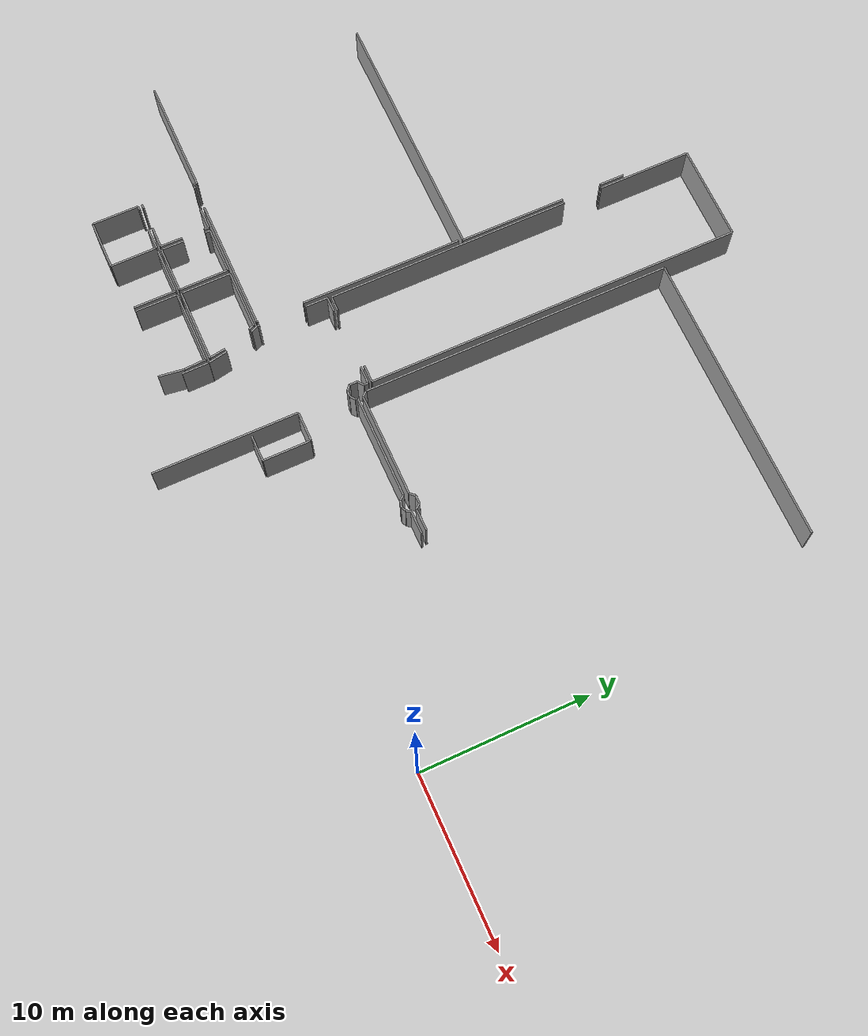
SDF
<sdf version="1.6">
 <world name="default">
  <model name="ground_plane">
   <static>1</static>
   <link name="link">
    <collision name="collision">
     <geometry><plane><normal>0 0 1</normal><size>100 100</size></plane></geometry>
     <surface><friction><ode><mu>100</mu><mu2>50</mu2></ode></friction></surface>
    </collision>
    <visual name="visual">
     <cast_shadows>0</cast_shadows>
     <geometry><plane><normal>0 0 1</normal><size>100 100</size></plane></geometry>
     <material>
      <script><uri>file://media/materials/scripts/gazebo.material</uri><name>Gazebo/Grey</name></script>
     </material>
    </visual>
   </link>
  </model>
  <model name="50041169">
   <static>1</static>
   <link name="Wall_0">
    <collision name="Wall_0_Collision">
     <geometry><box><size>15.3000393536 0.1 2.5</size></box></geometry>
     <pose>7.65001967679 0 1.25 0 0 0</pose>
    </collision>
    <visual name="Wall_0_Visual">
     <pose>7.65001967679 0 1.25 0 0 0</pose>
     <geometry><box><size>15.3000393536 0.1 2.5</size></box></geometry>
     <material>
      <script><uri>file://media/materials/scripts/gazebo.material</uri><name>Gazebo/Grey</name></script>
      <ambient>1 1 1 1</ambient>
     </material>
    </visual>
    <pose>45.1562083455 -14.251647138 0 0 0 3.14159265359</pose>
   </link>
   <link name="Wall_5">
    <collision name="Wall_5_Collision">
     <geometry><box><size>1.51155852894 0.1 2.5</size></box></geometry>
     <pose>0.755779264469 0 1.25 0 0 0</pose>
    </collision>
    <visual name="Wall_5_Visual">
     <pose>0.755779264469 0 1.25 0 0 0</pose>
     <geometry><box><size>1.51155852894 0.1 2.5</size></box></geometry>
     <material>
      <script><uri>file://media/materials/scripts/gazebo.material</uri><name>Gazebo/Grey</name></script>
      <ambient>1 1 1 1</ambient>
     </material>
    </visual>
    <pose>45.1559544514 -4.01984182398 0 0 0 -1.57079632679</pose>
   </link>
   <link name="Wall_6">
    <collision name="Wall_6_Collision">
     <geometry><box><size>6.33249971946 0.1 2.5</size></box></geometry>
     <pose>3.16624985973 0 1.25 0 0 0</pose>
    </collision>
    <visual name="Wall_6_Visual">
     <pose>3.16624985973 0 1.25 0 0 0</pose>
     <geometry><box><size>6.33249971946 0.1 2.5</size></box></geometry>
     <material>
      <script><uri>file://media/materials/scripts/gazebo.material</uri><name>Gazebo/Grey</name></script>
      <ambient>1 1 1 1</ambient>
     </material>
    </visual>
    <pose>45.1559544514 -7.91914742361 0 0 0 -1.57075623298</pose>
   </link>
   <link name="Wall_7">
    <collision name="Wall_7_Collision">
     <geometry><box><size>1.04870958323 0.1 2.5</size></box></geometry>
     <pose>0.524354791616 0 1.25 0 0 0</pose>
    </collision>
    <visual name="Wall_7_Visual">
     <pose>0.524354791616 0 1.25 0 0 0</pose>
     <geometry><box><size>1.04870958323 0.1 2.5</size></box></geometry>
     <material>
      <script><uri>file://media/materials/scripts/gazebo.material</uri><name>Gazebo/Grey</name></script>
      <ambient>1 1 1 1</ambient>
     </material>
    </visual>
    <pose>51.0838739162 -22.5202163178 0 0 0 3.14159265359</pose>
   </link>
   <link name="Wall_8">
    <collision name="Wall_8_Collision">
     <geometry><box><size>0.884820941185 0.1 2.5</size></box></geometry>
     <pose>0.442410470593 0 1.25 0 0 0</pose>
    </collision>
    <visual name="Wall_8_Visual">
     <pose>0.442410470593 0 1.25 0 0 0</pose>
     <geometry><box><size>0.884820941185 0.1 2.5</size></box></geometry>
     <material>
      <script><uri>file://media/materials/scripts/gazebo.material</uri><name>Gazebo/Grey</name></script>
      <ambient>1 1 1 1</ambient>
     </material>
    </visual>
    <pose>46.2591243192 -22.5202163178 0 0 0 3.14159265359</pose>
   </link>
   <link name="Wall_9">
    <collision name="Wall_9_Collision">
     <geometry><box><size>14.5852005129 0.1 2.5</size></box></geometry>
     <pose>7.29260025643 0 1.25 0 0 0</pose>
    </collision>
    <visual name="Wall_9_Visual">
     <pose>7.29260025643 0 1.25 0 0 0</pose>
     <geometry><box><size>14.5852005129 0.1 2.5</size></box></geometry>
     <material>
      <script><uri>file://media/materials/scripts/gazebo.material</uri><name>Gazebo/Grey</name></script>
      <ambient>1 1 1 1</ambient>
     </material>
    </visual>
    <pose>45.3743033781 -22.5202163178 0 0 0 1.57079632679</pose>
   </link>
   <link name="Wall_10">
    <collision name="Wall_10_Collision">
     <geometry><box><size>5.56377185076 0.1 2.5</size></box></geometry>
     <pose>2.78188592538 0 1.25 0 0 0</pose>
    </collision>
    <visual name="Wall_10_Visual">
     <pose>2.78188592538 0 1.25 0 0 0</pose>
     <geometry><box><size>5.56377185076 0.1 2.5</size></box></geometry>
     <material>
      <script><uri>file://media/materials/scripts/gazebo.material</uri><name>Gazebo/Grey</name></script>
      <ambient>1 1 1 1</ambient>
     </material>
    </visual>
    <pose>45.3743033781 -5.56377185076 0 0 0 1.57079632679</pose>
   </link>
   <link name="Wall_11">
    <collision name="Wall_11_Collision">
     <geometry><box><size>5.68849732776 0.1 2.5</size></box></geometry>
     <pose>2.84424866388 0 1.25 0 0 0</pose>
    </collision>
    <visual name="Wall_11_Visual">
     <pose>2.84424866388 0 1.25 0 0 0</pose>
     <geometry><box><size>5.68849732776 0.1 2.5</size></box></geometry>
     <material>
      <script><uri>file://media/materials/scripts/gazebo.material</uri><name>Gazebo/Grey</name></script>
      <ambient>1 1 1 1</ambient>
     </material>
    </visual>
    <pose>45.3743033781 -0.0 0 0 0 0.0</pose>
   </link>
   <link name="Wall_12">
    <collision name="Wall_12_Collision">
     <geometry><box><size>22.5202261774 0.1 2.5</size></box></geometry>
     <pose>11.2601130887 0 1.25 0 0 0</pose>
    </collision>
    <visual name="Wall_12_Visual">
     <pose>11.2601130887 0 1.25 0 0 0</pose>
     <geometry><box><size>22.5202261774 0.1 2.5</size></box></geometry>
     <material>
      <script><uri>file://media/materials/scripts/gazebo.material</uri><name>Gazebo/Grey</name></script>
      <ambient>1 1 1 1</ambient>
     </material>
    </visual>
    <pose>51.0628007058 -0.0 0 0 0 -1.56986058071</pose>
   </link>
   <link name="Wall_13">
    <collision name="Wall_13_Collision">
     <geometry><box><size>0.0944486054866 0.1 2.5</size></box></geometry>
     <pose>0.0472243027433 0 1.25 0 0 0</pose>
    </collision>
    <visual name="Wall_13_Visual">
     <pose>0.0472243027433 0 1.25 0 0 0</pose>
     <geometry><box><size>0.0944486054866 0.1 2.5</size></box></geometry>
     <material>
      <script><uri>file://media/materials/scripts/gazebo.material</uri><name>Gazebo/Grey</name></script>
      <ambient>1 1 1 1</ambient>
     </material>
    </visual>
    <pose>45.0571896462 -26.8521574651 0 0 0 -1.57079632679</pose>
   </link>
   <link name="Wall_14">
    <collision name="Wall_14_Collision">
     <geometry><box><size>7.95145544793 0.1 2.5</size></box></geometry>
     <pose>3.97572772397 0 1.25 0 0 0</pose>
    </collision>
    <visual name="Wall_14_Visual">
     <pose>3.97572772397 0 1.25 0 0 0</pose>
     <geometry><box><size>7.95145544793 0.1 2.5</size></box></geometry>
     <material>
      <script><uri>file://media/materials/scripts/gazebo.material</uri><name>Gazebo/Grey</name></script>
      <ambient>1 1 1 1</ambient>
     </material>
    </visual>
    <pose>45.0571896462 -26.9466060706 0 0 0 3.14159265359</pose>
   </link>
   <link name="Wall_15">
    <collision name="Wall_15_Collision">
     <geometry><box><size>0.261257029693 0.1 2.5</size></box></geometry>
     <pose>0.130628514846 0 1.25 0 0 0</pose>
    </collision>
    <visual name="Wall_15_Visual">
     <pose>0.130628514846 0 1.25 0 0 0</pose>
     <geometry><box><size>0.261257029693 0.1 2.5</size></box></geometry>
     <material>
      <script><uri>file://media/materials/scripts/gazebo.material</uri><name>Gazebo/Grey</name></script>
      <ambient>1 1 1 1</ambient>
     </material>
    </visual>
    <pose>35.7265814429 -26.9466060706 0 0 0 3.14159265359</pose>
   </link>
   <link name="Wall_16">
    <collision name="Wall_16_Collision">
     <geometry><box><size>0.196006245795 0.1 2.5</size></box></geometry>
     <pose>0.0980031228974 0 1.25 0 0 0</pose>
    </collision>
    <visual name="Wall_16_Visual">
     <pose>0.0980031228974 0 1.25 0 0 0</pose>
     <geometry><box><size>0.196006245795 0.1 2.5</size></box></geometry>
     <material>
      <script><uri>file://media/materials/scripts/gazebo.material</uri><name>Gazebo/Grey</name></script>
      <ambient>1 1 1 1</ambient>
     </material>
    </visual>
    <pose>35.4653244132 -26.9466060706 0 0 0 1.57079632679</pose>
   </link>
   <link name="Wall_17">
    <collision name="Wall_17_Collision">
     <geometry><box><size>6.8684701611 0.1 2.5</size></box></geometry>
     <pose>3.43423508055 0 1.25 0 0 0</pose>
    </collision>
    <visual name="Wall_17_Visual">
     <pose>3.43423508055 0 1.25 0 0 0</pose>
     <geometry><box><size>6.8684701611 0.1 2.5</size></box></geometry>
     <material>
      <script><uri>file://media/materials/scripts/gazebo.material</uri><name>Gazebo/Grey</name></script>
      <ambient>1 1 1 1</ambient>
     </material>
    </visual>
    <pose>35.4653244132 -26.7505998248 0 0 0 3.14159265359</pose>
   </link>
   <link name="Wall_26">
    <collision name="Wall_26_Collision">
     <geometry><box><size>9.60674401945 0.1 2.5</size></box></geometry>
     <pose>4.80337200972 0 1.25 0 0 0</pose>
    </collision>
    <visual name="Wall_26_Visual">
     <pose>4.80337200972 0 1.25 0 0 0</pose>
     <geometry><box><size>9.60674401945 0.1 2.5</size></box></geometry>
     <material>
      <script><uri>file://media/materials/scripts/gazebo.material</uri><name>Gazebo/Grey</name></script>
      <ambient>1 1 1 1</ambient>
     </material>
    </visual>
    <pose>45.0795323271 -14.5125233265 0 0 0 -1.57312205765</pose>
   </link>
   <link name="Wall_50">
    <collision name="Wall_50_Collision">
     <geometry><box><size>1.29524075508 0.1 2.5</size></box></geometry>
     <pose>0.647620377541 0 1.25 0 0 0</pose>
    </collision>
    <visual name="Wall_50_Visual">
     <pose>0.647620377541 0 1.25 0 0 0</pose>
     <geometry><box><size>1.29524075508 0.1 2.5</size></box></geometry>
     <material>
      <script><uri>file://media/materials/scripts/gazebo.material</uri><name>Gazebo/Grey</name></script>
      <ambient>1 1 1 1</ambient>
     </material>
    </visual>
    <pose>38.4089726175 -30.1438944816 0 0 0 3.14159265359</pose>
   </link>
   <link name="Wall_51">
    <collision name="Wall_51_Collision">
     <geometry><box><size>0.290327904231 0.1 2.5</size></box></geometry>
     <pose>0.145163952116 0 1.25 0 0 0</pose>
    </collision>
    <visual name="Wall_51_Visual">
     <pose>0.145163952116 0 1.25 0 0 0</pose>
     <geometry><box><size>0.290327904231 0.1 2.5</size></box></geometry>
     <material>
      <script><uri>file://media/materials/scripts/gazebo.material</uri><name>Gazebo/Grey</name></script>
      <ambient>1 1 1 1</ambient>
     </material>
    </visual>
    <pose>35.7339443718 -30.1438944816 0 0 0 3.14159265359</pose>
   </link>
   <link name="Wall_54">
    <collision name="Wall_54_Collision">
     <geometry><box><size>1.34601957524 0.1 2.5</size></box></geometry>
     <pose>0.673009787618 0 1.25 0 0 0</pose>
    </collision>
    <visual name="Wall_54_Visual">
     <pose>0.673009787618 0 1.25 0 0 0</pose>
     <geometry><box><size>1.34601957524 0.1 2.5</size></box></geometry>
     <material>
      <script><uri>file://media/materials/scripts/gazebo.material</uri><name>Gazebo/Grey</name></script>
      <ambient>1 1 1 1</ambient>
     </material>
    </visual>
    <pose>37.072347124 -27.1857743135 0 0 0 0.0</pose>
   </link>
   <link name="Wall_55">
    <collision name="Wall_55_Collision">
     <geometry><box><size>0.294771050995 0.1 2.5</size></box></geometry>
     <pose>0.147385525497 0 1.25 0 0 0</pose>
    </collision>
    <visual name="Wall_55_Visual">
     <pose>0.147385525497 0 1.25 0 0 0</pose>
     <geometry><box><size>0.294771050995 0.1 2.5</size></box></geometry>
     <material>
      <script><uri>file://media/materials/scripts/gazebo.material</uri><name>Gazebo/Grey</name></script>
      <ambient>1 1 1 1</ambient>
     </material>
    </visual>
    <pose>38.4183666992 -27.1857743135 0 0 0 -1.57079632679</pose>
   </link>
   <link name="Wall_56">
    <collision name="Wall_56_Collision">
     <geometry><box><size>1.31495110423 0.1 2.5</size></box></geometry>
     <pose>0.657475552116 0 1.25 0 0 0</pose>
    </collision>
    <visual name="Wall_56_Visual">
     <pose>0.657475552116 0 1.25 0 0 0</pose>
     <geometry><box><size>1.31495110423 0.1 2.5</size></box></geometry>
     <material>
      <script><uri>file://media/materials/scripts/gazebo.material</uri><name>Gazebo/Grey</name></script>
      <ambient>1 1 1 1</ambient>
     </material>
    </visual>
    <pose>38.4183666992 -28.8289769337 0 0 0 -1.57794044159</pose>
   </link>
   <link name="Wall_57">
    <collision name="Wall_57_Collision">
     <geometry><box><size>2.79486626128 0.1 2.5</size></box></geometry>
     <pose>1.39743313064 0 1.25 0 0 0</pose>
    </collision>
    <visual name="Wall_57_Visual">
     <pose>1.39743313064 0 1.25 0 0 0</pose>
     <geometry><box><size>2.79486626128 0.1 2.5</size></box></geometry>
     <material>
      <script><uri>file://media/materials/scripts/gazebo.material</uri><name>Gazebo/Grey</name></script>
      <ambient>1 1 1 1</ambient>
     </material>
    </visual>
    <pose>41.4248536935 -30.170172521 0 0 0 3.14159265359</pose>
   </link>
   <link name="Wall_58">
    <collision name="Wall_58_Collision">
     <geometry><box><size>1.34259200487 0.1 2.5</size></box></geometry>
     <pose>0.671296002437 0 1.25 0 0 0</pose>
    </collision>
    <visual name="Wall_58_Visual">
     <pose>0.671296002437 0 1.25 0 0 0</pose>
     <geometry><box><size>1.34259200487 0.1 2.5</size></box></geometry>
     <material>
      <script><uri>file://media/materials/scripts/gazebo.material</uri><name>Gazebo/Grey</name></script>
      <ambient>1 1 1 1</ambient>
     </material>
    </visual>
    <pose>38.6299874322 -30.170172521 0 0 0 1.57079632679</pose>
   </link>
   <link name="Wall_59">
    <collision name="Wall_59_Collision">
     <geometry><box><size>0.307084914882 0.1 2.5</size></box></geometry>
     <pose>0.153542457441 0 1.25 0 0 0</pose>
    </collision>
    <visual name="Wall_59_Visual">
     <pose>0.153542457441 0 1.25 0 0 0</pose>
     <geometry><box><size>0.307084914882 0.1 2.5</size></box></geometry>
     <material>
      <script><uri>file://media/materials/scripts/gazebo.material</uri><name>Gazebo/Grey</name></script>
      <ambient>1 1 1 1</ambient>
     </material>
    </visual>
    <pose>38.6299874322 -27.5006029985 0 0 0 1.57079632679</pose>
   </link>
   <link name="Wall_60">
    <collision name="Wall_60_Collision">
     <geometry><box><size>2.76541454559 0.1 2.5</size></box></geometry>
     <pose>1.3827072728 0 1.25 0 0 0</pose>
    </collision>
    <visual name="Wall_60_Visual">
     <pose>1.3827072728 0 1.25 0 0 0</pose>
     <geometry><box><size>2.76541454559 0.1 2.5</size></box></geometry>
     <material>
      <script><uri>file://media/materials/scripts/gazebo.material</uri><name>Gazebo/Grey</name></script>
      <ambient>1 1 1 1</ambient>
     </material>
    </visual>
    <pose>38.6299874322 -27.1935180836 0 0 0 0.0</pose>
   </link>
   <link name="Wall_61">
    <collision name="Wall_61_Collision">
     <geometry><box><size>2.97680013495 0.1 2.5</size></box></geometry>
     <pose>1.48840006748 0 1.25 0 0 0</pose>
    </collision>
    <visual name="Wall_61_Visual">
     <pose>1.48840006748 0 1.25 0 0 0</pose>
     <geometry><box><size>2.97680013495 0.1 2.5</size></box></geometry>
     <material>
      <script><uri>file://media/materials/scripts/gazebo.material</uri><name>Gazebo/Grey</name></script>
      <ambient>1 1 1 1</ambient>
     </material>
    </visual>
    <pose>41.3954019778 -27.1935180836 0 0 0 -1.56090241559</pose>
   </link>
   <link name="Wall_62">
    <collision name="Wall_62_Collision">
     <geometry><box><size>2.95646985642 0.1 2.5</size></box></geometry>
     <pose>1.47823492821 0 1.25 0 0 0</pose>
    </collision>
    <visual name="Wall_62_Visual">
     <pose>1.47823492821 0 1.25 0 0 0</pose>
     <geometry><box><size>2.95646985642 0.1 2.5</size></box></geometry>
     <material>
      <script><uri>file://media/materials/scripts/gazebo.material</uri><name>Gazebo/Grey</name></script>
      <ambient>1 1 1 1</ambient>
     </material>
    </visual>
    <pose>38.4207786932 -33.1645995455 0 0 0 3.14159265359</pose>
   </link>
   <link name="Wall_63">
    <collision name="Wall_63_Collision">
     <geometry><box><size>2.77366610387 0.1 2.5</size></box></geometry>
     <pose>1.38683305193 0 1.25 0 0 0</pose>
    </collision>
    <visual name="Wall_63_Visual">
     <pose>1.38683305193 0 1.25 0 0 0</pose>
     <geometry><box><size>2.77366610387 0.1 2.5</size></box></geometry>
     <material>
      <script><uri>file://media/materials/scripts/gazebo.material</uri><name>Gazebo/Grey</name></script>
      <ambient>1 1 1 1</ambient>
     </material>
    </visual>
    <pose>35.4643088368 -33.1645995455 0 0 0 1.57079632679</pose>
   </link>
   <link name="Wall_64">
    <collision name="Wall_64_Collision">
     <geometry><box><size>0.271793634875 0.1 2.5</size></box></geometry>
     <pose>0.135896817437 0 1.25 0 0 0</pose>
    </collision>
    <visual name="Wall_64_Visual">
     <pose>0.135896817437 0 1.25 0 0 0</pose>
     <geometry><box><size>0.271793634875 0.1 2.5</size></box></geometry>
     <material>
      <script><uri>file://media/materials/scripts/gazebo.material</uri><name>Gazebo/Grey</name></script>
      <ambient>1 1 1 1</ambient>
     </material>
    </visual>
    <pose>35.4643088368 -30.3909334417 0 0 0 0.0</pose>
   </link>
   <link name="Wall_65">
    <collision name="Wall_65_Collision">
     <geometry><box><size>1.31377502444 0.1 2.5</size></box></geometry>
     <pose>0.656887512219 0 1.25 0 0 0</pose>
    </collision>
    <visual name="Wall_65_Visual">
     <pose>0.656887512219 0 1.25 0 0 0</pose>
     <geometry><box><size>1.31377502444 0.1 2.5</size></box></geometry>
     <material>
      <script><uri>file://media/materials/scripts/gazebo.material</uri><name>Gazebo/Grey</name></script>
      <ambient>1 1 1 1</ambient>
     </material>
    </visual>
    <pose>37.0911352875 -30.3909334417 0 0 0 0.0</pose>
   </link>
   <link name="Wall_66">
    <collision name="Wall_66_Collision">
     <geometry><box><size>2.77371149568 0.1 2.5</size></box></geometry>
     <pose>1.38685574784 0 1.25 0 0 0</pose>
    </collision>
    <visual name="Wall_66_Visual">
     <pose>1.38685574784 0 1.25 0 0 0</pose>
     <geometry><box><size>2.77371149568 0.1 2.5</size></box></geometry>
     <material>
      <script><uri>file://media/materials/scripts/gazebo.material</uri><name>Gazebo/Grey</name></script>
      <ambient>1 1 1 1</ambient>
     </material>
    </visual>
    <pose>38.4049103119 -30.3909334417 0 0 0 -1.56507530358</pose>
   </link>
   <link name="Wall_69">
    <collision name="Wall_69_Collision">
     <geometry><box><size>1.59346858451 0.1 2.5</size></box></geometry>
     <pose>0.796734292254 0 1.25 0 0 0</pose>
    </collision>
    <visual name="Wall_69_Visual">
     <pose>0.796734292254 0 1.25 0 0 0</pose>
     <geometry><box><size>1.59346858451 0.1 2.5</size></box></geometry>
     <material>
      <script><uri>file://media/materials/scripts/gazebo.material</uri><name>Gazebo/Grey</name></script>
      <ambient>1 1 1 1</ambient>
     </material>
    </visual>
    <pose>46.3016515811 -31.9071890115 0 0 0 1.57685106479</pose>
   </link>
   <link name="Wall_70">
    <collision name="Wall_70_Collision">
     <geometry><box><size>1.18235773794 0.1 2.5</size></box></geometry>
     <pose>0.591178868972 0 1.25 0 0 0</pose>
    </collision>
    <visual name="Wall_70_Visual">
     <pose>0.591178868972 0 1.25 0 0 0</pose>
     <geometry><box><size>1.18235773794 0.1 2.5</size></box></geometry>
     <material>
      <script><uri>file://media/materials/scripts/gazebo.material</uri><name>Gazebo/Grey</name></script>
      <ambient>1 1 1 1</ambient>
     </material>
    </visual>
    <pose>46.2920036053 -30.313749635 0 0 0 1.75861101364</pose>
   </link>
   <link name="Wall_71">
    <collision name="Wall_71_Collision">
     <geometry><box><size>0.484234028282 0.1 2.5</size></box></geometry>
     <pose>0.242117014141 0 1.25 0 0 0</pose>
    </collision>
    <visual name="Wall_71_Visual">
     <pose>0.242117014141 0 1.25 0 0 0</pose>
     <geometry><box><size>0.484234028282 0.1 2.5</size></box></geometry>
     <material>
      <script><uri>file://media/materials/scripts/gazebo.material</uri><name>Gazebo/Grey</name></script>
      <ambient>1 1 1 1</ambient>
     </material>
    </visual>
    <pose>45.525243421 -27.4401762025 0 0 0 1.98753002715</pose>
   </link>
   <link name="Wall_72">
    <collision name="Wall_72_Collision">
     <geometry><box><size>0.123392532974 0.1 2.5</size></box></geometry>
     <pose>0.0616962664872 0 1.25 0 0 0</pose>
    </collision>
    <visual name="Wall_72_Visual">
     <pose>0.0616962664872 0 1.25 0 0 0</pose>
     <geometry><box><size>0.123392532974 0.1 2.5</size></box></geometry>
     <material>
      <script><uri>file://media/materials/scripts/gazebo.material</uri><name>Gazebo/Grey</name></script>
      <ambient>1 1 1 1</ambient>
     </material>
    </visual>
    <pose>45.3292371752 -26.9973848908 0 0 0 1.57079632679</pose>
   </link>
   <link name="Wall_73">
    <collision name="Wall_73_Collision">
     <geometry><box><size>1.35960290963 0.1 2.5</size></box></geometry>
     <pose>0.679801454813 0 1.25 0 0 0</pose>
    </collision>
    <visual name="Wall_73_Visual">
     <pose>0.679801454813 0 1.25 0 0 0</pose>
     <geometry><box><size>1.35960290963 0.1 2.5</size></box></geometry>
     <material>
      <script><uri>file://media/materials/scripts/gazebo.material</uri><name>Gazebo/Grey</name></script>
      <ambient>1 1 1 1</ambient>
     </material>
    </visual>
    <pose>45.3292371752 -24.0938519543 0 0 0 1.57079632679</pose>
   </link>
   <link name="Wall_74">
    <collision name="Wall_74_Collision">
     <geometry><box><size>0.913130133421 0.1 2.5</size></box></geometry>
     <pose>0.456565066711 0 1.25 0 0 0</pose>
    </collision>
    <visual name="Wall_74_Visual">
     <pose>0.456565066711 0 1.25 0 0 0</pose>
     <geometry><box><size>0.913130133421 0.1 2.5</size></box></geometry>
     <material>
      <script><uri>file://media/materials/scripts/gazebo.material</uri><name>Gazebo/Grey</name></script>
      <ambient>1 1 1 1</ambient>
     </material>
    </visual>
    <pose>45.3292371752 -22.7342490447 0 0 0 0.0</pose>
   </link>
   <link name="Wall_75">
    <collision name="Wall_75_Collision">
     <geometry><box><size>1.06838637604 0.1 2.5</size></box></geometry>
     <pose>0.534193188021 0 1.25 0 0 0</pose>
    </collision>
    <visual name="Wall_75_Visual">
     <pose>0.534193188021 0 1.25 0 0 0</pose>
     <geometry><box><size>1.06838637604 0.1 2.5</size></box></geometry>
     <material>
      <script><uri>file://media/materials/scripts/gazebo.material</uri><name>Gazebo/Grey</name></script>
      <ambient>1 1 1 1</ambient>
     </material>
    </visual>
    <pose>50.015233646 -22.7342490447 0 0 0 0.0</pose>
   </link>
   <link name="Wall_76">
    <collision name="Wall_76_Collision">
     <geometry><box><size>0.258718088685 0.1 2.5</size></box></geometry>
     <pose>0.129359044343 0 1.25 0 0 0</pose>
    </collision>
    <visual name="Wall_76_Visual">
     <pose>0.129359044343 0 1.25 0 0 0</pose>
     <geometry><box><size>0.258718088685 0.1 2.5</size></box></geometry>
     <material>
      <script><uri>file://media/materials/scripts/gazebo.material</uri><name>Gazebo/Grey</name></script>
      <ambient>1 1 1 1</ambient>
     </material>
    </visual>
    <pose>51.0836200221 -22.7342490447 0 0 0 -1.57079632679</pose>
   </link>
   <link name="Wall_77">
    <collision name="Wall_77_Collision">
     <geometry><box><size>0.429033328611 0.1 2.5</size></box></geometry>
     <pose>0.214516664306 0 1.25 0 0 0</pose>
    </collision>
    <visual name="Wall_77_Visual">
     <pose>0.214516664306 0 1.25 0 0 0</pose>
     <geometry><box><size>0.429033328611 0.1 2.5</size></box></geometry>
     <material>
      <script><uri>file://media/materials/scripts/gazebo.material</uri><name>Gazebo/Grey</name></script>
      <ambient>1 1 1 1</ambient>
     </material>
    </visual>
    <pose>51.0836200221 -22.9929671334 0 0 0 -2.49430413244</pose>
   </link>
   <link name="Wall_78">
    <collision name="Wall_78_Collision">
     <geometry><box><size>0.467621052679 0.1 2.5</size></box></geometry>
     <pose>0.233810526339 0 1.25 0 0 0</pose>
    </collision>
    <visual name="Wall_78_Visual">
     <pose>0.233810526339 0 1.25 0 0 0</pose>
     <geometry><box><size>0.467621052679 0.1 2.5</size></box></geometry>
     <material>
      <script><uri>file://media/materials/scripts/gazebo.material</uri><name>Gazebo/Grey</name></script>
      <ambient>1 1 1 1</ambient>
     </material>
    </visual>
    <pose>50.7413707743 -23.2516852221 0 0 0 -1.5528780709</pose>
   </link>
   <link name="Wall_79">
    <collision name="Wall_79_Collision">
     <geometry><box><size>0.360921984406 0.1 2.5</size></box></geometry>
     <pose>0.180460992203 0 1.25 0 0 0</pose>
    </collision>
    <visual name="Wall_79_Visual">
     <pose>0.180460992203 0 1.25 0 0 0</pose>
     <geometry><box><size>0.360921984406 0.1 2.5</size></box></geometry>
     <material>
      <script><uri>file://media/materials/scripts/gazebo.material</uri><name>Gazebo/Grey</name></script>
      <ambient>1 1 1 1</ambient>
     </material>
    </visual>
    <pose>50.7497492796 -23.7192312087 0 0 0 -0.708969626303</pose>
   </link>
   <link name="Wall_80">
    <collision name="Wall_80_Collision">
     <geometry><box><size>8.64585975116 0.1 2.5</size></box></geometry>
     <pose>4.32292987558 0 1.25 0 0 0</pose>
    </collision>
    <visual name="Wall_80_Visual">
     <pose>4.32292987558 0 1.25 0 0 0</pose>
     <geometry><box><size>8.64585975116 0.1 2.5</size></box></geometry>
     <material>
      <script><uri>file://media/materials/scripts/gazebo.material</uri><name>Gazebo/Grey</name></script>
      <ambient>1 1 1 1</ambient>
     </material>
    </visual>
    <pose>51.1170070963 -26.9493989057 0 0 0 -1.56984193246</pose>
   </link>
   <link name="Wall_81">
    <collision name="Wall_81_Collision">
     <geometry><box><size>4.38398943801 0.1 2.5</size></box></geometry>
     <pose>2.191994719 0 1.25 0 0 0</pose>
    </collision>
    <visual name="Wall_81_Visual">
     <pose>2.191994719 0 1.25 0 0 0</pose>
     <geometry><box><size>4.38398943801 0.1 2.5</size></box></geometry>
     <material>
      <script><uri>file://media/materials/scripts/gazebo.material</uri><name>Gazebo/Grey</name></script>
      <ambient>1 1 1 1</ambient>
     </material>
    </visual>
    <pose>46.0406484455 -30.1546849809 0 0 0 3.14159265359</pose>
   </link>
   <link name="Wall_82">
    <collision name="Wall_82_Collision">
     <geometry><box><size>2.97817780204 0.1 2.5</size></box></geometry>
     <pose>1.48908890102 0 1.25 0 0 0</pose>
    </collision>
    <visual name="Wall_82_Visual">
     <pose>1.48908890102 0 1.25 0 0 0</pose>
     <geometry><box><size>2.97817780204 0.1 2.5</size></box></geometry>
     <material>
      <script><uri>file://media/materials/scripts/gazebo.material</uri><name>Gazebo/Grey</name></script>
      <ambient>1 1 1 1</ambient>
     </material>
    </visual>
    <pose>41.6566590075 -30.1546849809 0 0 0 1.57079632679</pose>
   </link>
   <link name="Wall_83">
    <collision name="Wall_83_Collision">
     <geometry><box><size>3.52316148934 0.1 2.5</size></box></geometry>
     <pose>1.76158074467 0 1.25 0 0 0</pose>
    </collision>
    <visual name="Wall_83_Visual">
     <pose>1.76158074467 0 1.25 0 0 0</pose>
     <geometry><box><size>3.52316148934 0.1 2.5</size></box></geometry>
     <material>
      <script><uri>file://media/materials/scripts/gazebo.material</uri><name>Gazebo/Grey</name></script>
      <ambient>1 1 1 1</ambient>
     </material>
    </visual>
    <pose>41.6566590075 -27.1765071789 0 0 0 0.0</pose>
   </link>
   <link name="Wall_84">
    <collision name="Wall_84_Collision">
     <geometry><box><size>0.364900700973 0.1 2.5</size></box></geometry>
     <pose>0.182450350487 0 1.25 0 0 0</pose>
    </collision>
    <visual name="Wall_84_Visual">
     <pose>0.182450350487 0 1.25 0 0 0</pose>
     <geometry><box><size>0.364900700973 0.1 2.5</size></box></geometry>
     <material>
      <script><uri>file://media/materials/scripts/gazebo.material</uri><name>Gazebo/Grey</name></script>
      <ambient>1 1 1 1</ambient>
     </material>
    </visual>
    <pose>45.1798204969 -27.1765071789 0 0 0 -1.09563530093</pose>
   </link>
   <link name="Wall_85">
    <collision name="Wall_85_Collision">
     <geometry><box><size>0.977701332568 0.1 2.5</size></box></geometry>
     <pose>0.488850666284 0 1.25 0 0 0</pose>
    </collision>
    <visual name="Wall_85_Visual">
     <pose>0.488850666284 0 1.25 0 0 0</pose>
     <geometry><box><size>0.977701332568 0.1 2.5</size></box></geometry>
     <material>
      <script><uri>file://media/materials/scripts/gazebo.material</uri><name>Gazebo/Grey</name></script>
      <ambient>1 1 1 1</ambient>
     </material>
    </visual>
    <pose>45.8894545085 -29.1887448745 0 0 0 -1.41553098644</pose>
   </link>
   <link name="Wall_151">
    <collision name="Wall_151_Collision">
     <geometry><box><size>2.51913726785 0.1 2.5</size></box></geometry>
     <pose>1.25956863392 0 1.25 0 0 0</pose>
    </collision>
    <visual name="Wall_151_Visual">
     <pose>1.25956863392 0 1.25 0 0 0</pose>
     <geometry><box><size>2.51913726785 0.1 2.5</size></box></geometry>
     <material>
      <script><uri>file://media/materials/scripts/gazebo.material</uri><name>Gazebo/Grey</name></script>
      <ambient>1 1 1 1</ambient>
     </material>
    </visual>
    <pose>41.6492960786 -32.9046119863 0 0 0 1.57079632679</pose>
   </link>
   <link name="Wall_152">
    <collision name="Wall_152_Collision">
     <geometry><box><size>4.39160626103 0.1 2.5</size></box></geometry>
     <pose>2.19580313051 0 1.25 0 0 0</pose>
    </collision>
    <visual name="Wall_152_Visual">
     <pose>2.19580313051 0 1.25 0 0 0</pose>
     <geometry><box><size>4.39160626103 0.1 2.5</size></box></geometry>
     <material>
      <script><uri>file://media/materials/scripts/gazebo.material</uri><name>Gazebo/Grey</name></script>
      <ambient>1 1 1 1</ambient>
     </material>
    </visual>
    <pose>41.6492960786 -30.3854747185 0 0 0 0.0</pose>
   </link>
   <link name="Wall_153">
    <collision name="Wall_153_Collision">
     <geometry><box><size>1.3170033563 0.1 2.5</size></box></geometry>
     <pose>0.65850167815 0 1.25 0 0 0</pose>
    </collision>
    <visual name="Wall_153_Visual">
     <pose>0.65850167815 0 1.25 0 0 0</pose>
     <geometry><box><size>1.3170033563 0.1 2.5</size></box></geometry>
     <material>
      <script><uri>file://media/materials/scripts/gazebo.material</uri><name>Gazebo/Grey</name></script>
      <ambient>1 1 1 1</ambient>
     </material>
    </visual>
    <pose>46.0409023396 -30.3854747185 0 0 0 -1.51804608092</pose>
   </link>
   <link name="Wall_154">
    <collision name="Wall_154_Collision">
     <geometry><box><size>1.50238729876 0.1 2.5</size></box></geometry>
     <pose>0.751193649381 0 1.25 0 0 0</pose>
    </collision>
    <visual name="Wall_154_Visual">
     <pose>0.751193649381 0 1.25 0 0 0</pose>
     <geometry><box><size>1.50238729876 0.1 2.5</size></box></geometry>
     <material>
      <script><uri>file://media/materials/scripts/gazebo.material</uri><name>Gazebo/Grey</name></script>
      <ambient>1 1 1 1</ambient>
     </material>
    </visual>
    <pose>46.1103423762 -31.7006461605 0 0 0 -1.70137680766</pose>
   </link>
   <link name="Wall_158">
    <collision name="Wall_158_Collision">
     <geometry><box><size>2.77353915682 0.1 2.5</size></box></geometry>
     <pose>1.38676957841 0 1.25 0 0 0</pose>
    </collision>
    <visual name="Wall_158_Visual">
     <pose>1.38676957841 0 1.25 0 0 0</pose>
     <geometry><box><size>2.77353915682 0.1 2.5</size></box></geometry>
     <material>
      <script><uri>file://media/materials/scripts/gazebo.material</uri><name>Gazebo/Grey</name></script>
      <ambient>1 1 1 1</ambient>
     </material>
    </visual>
    <pose>38.632018585 -30.3909334417 0 0 0 0.0</pose>
   </link>
   <link name="Wall_159">
    <collision name="Wall_159_Collision">
     <geometry><box><size>2.50987013317 0.1 2.5</size></box></geometry>
     <pose>1.25493506658 0 1.25 0 0 0</pose>
    </collision>
    <visual name="Wall_159_Visual">
     <pose>1.25493506658 0 1.25 0 0 0</pose>
     <geometry><box><size>2.50987013317 0.1 2.5</size></box></geometry>
     <material>
      <script><uri>file://media/materials/scripts/gazebo.material</uri><name>Gazebo/Grey</name></script>
      <ambient>1 1 1 1</ambient>
     </material>
    </visual>
    <pose>41.4055577419 -30.3909334417 0 0 0 -1.57079632679</pose>
   </link>
   <link name="Wall_212">
    <collision name="Wall_212_Collision">
     <geometry><box><size>1.75656633618 0.1 2.5</size></box></geometry>
     <pose>0.878283168091 0 1.25 0 0 0</pose>
    </collision>
    <visual name="Wall_212_Visual">
     <pose>0.878283168091 0 1.25 0 0 0</pose>
     <geometry><box><size>1.75656633618 0.1 2.5</size></box></geometry>
     <material>
      <script><uri>file://media/materials/scripts/gazebo.material</uri><name>Gazebo/Grey</name></script>
      <ambient>1 1 1 1</ambient>
     </material>
    </visual>
    <pose>52.9141964886 -26.9392431417 0 0 0 3.14159265359</pose>
   </link>
   <link name="Wall_213">
    <collision name="Wall_213_Collision">
     <geometry><box><size>0.343677764099 0.1 2.5</size></box></geometry>
     <pose>0.17183888205 0 1.25 0 0 0</pose>
    </collision>
    <visual name="Wall_213_Visual">
     <pose>0.17183888205 0 1.25 0 0 0</pose>
     <geometry><box><size>0.343677764099 0.1 2.5</size></box></geometry>
     <material>
      <script><uri>file://media/materials/scripts/gazebo.material</uri><name>Gazebo/Grey</name></script>
      <ambient>1 1 1 1</ambient>
     </material>
    </visual>
    <pose>51.0545491476 -23.969443845 0 0 0 -0.0136674163746</pose>
   </link>
   <link name="Wall_214">
    <collision name="Wall_214_Collision">
     <geometry><box><size>0.345810522644 0.1 2.5</size></box></geometry>
     <pose>0.172905261322 0 1.25 0 0 0</pose>
    </collision>
    <visual name="Wall_214_Visual">
     <pose>0.172905261322 0 1.25 0 0 0</pose>
     <geometry><box><size>0.345810522644 0.1 2.5</size></box></geometry>
     <material>
      <script><uri>file://media/materials/scripts/gazebo.material</uri><name>Gazebo/Grey</name></script>
      <ambient>1 1 1 1</ambient>
     </material>
    </visual>
    <pose>51.3981948129 -23.9741408858 0 0 0 0.687640863057</pose>
   </link>
   <link name="Wall_215">
    <collision name="Wall_215_Collision">
     <geometry><box><size>0.135847936107 0.1 2.5</size></box></geometry>
     <pose>0.0679239680536 0 1.25 0 0 0</pose>
    </collision>
    <visual name="Wall_215_Visual">
     <pose>0.0679239680536 0 1.25 0 0 0</pose>
     <geometry><box><size>0.135847936107 0.1 2.5</size></box></geometry>
     <material>
      <script><uri>file://media/materials/scripts/gazebo.material</uri><name>Gazebo/Grey</name></script>
      <ambient>1 1 1 1</ambient>
     </material>
    </visual>
    <pose>51.665418354 -23.7546494357 0 0 0 1.24845475592</pose>
   </link>
   <link name="Wall_216">
    <collision name="Wall_216_Collision">
     <geometry><box><size>6.1945082706 0.1 2.5</size></box></geometry>
     <pose>3.0972541353 0 1.25 0 0 0</pose>
    </collision>
    <visual name="Wall_216_Visual">
     <pose>3.0972541353 0 1.25 0 0 0</pose>
     <geometry><box><size>6.1945082706 0.1 2.5</size></box></geometry>
     <material>
      <script><uri>file://media/materials/scripts/gazebo.material</uri><name>Gazebo/Grey</name></script>
      <ambient>1 1 1 1</ambient>
     </material>
    </visual>
    <pose>51.7084534041 -23.6257981796 0 0 0 0.0</pose>
   </link>
   <link name="Wall_217">
    <collision name="Wall_217_Collision">
     <geometry><box><size>0.332360494219 0.1 2.5</size></box></geometry>
     <pose>0.166180247109 0 1.25 0 0 0</pose>
    </collision>
    <visual name="Wall_217_Visual">
     <pose>0.166180247109 0 1.25 0 0 0</pose>
     <geometry><box><size>0.332360494219 0.1 2.5</size></box></geometry>
     <material>
      <script><uri>file://media/materials/scripts/gazebo.material</uri><name>Gazebo/Grey</name></script>
      <ambient>1 1 1 1</ambient>
     </material>
    </visual>
    <pose>57.9029616747 -23.6257981796 0 0 0 -0.9588500113</pose>
   </link>
   <link name="Wall_218">
    <collision name="Wall_218_Collision">
     <geometry><box><size>0.408543162374 0.1 2.5</size></box></geometry>
     <pose>0.204271581187 0 1.25 0 0 0</pose>
    </collision>
    <visual name="Wall_218_Visual">
     <pose>0.204271581187 0 1.25 0 0 0</pose>
     <geometry><box><size>0.408543162374 0.1 2.5</size></box></geometry>
     <material>
      <script><uri>file://media/materials/scripts/gazebo.material</uri><name>Gazebo/Grey</name></script>
      <ambient>1 1 1 1</ambient>
     </material>
    </visual>
    <pose>58.0938900385 -23.8978457086 0 0 0 -0.247691747132</pose>
   </link>
   <link name="Wall_219">
    <collision name="Wall_219_Collision">
     <geometry><box><size>0.307397112052 0.1 2.5</size></box></geometry>
     <pose>0.153698556026 0 1.25 0 0 0</pose>
    </collision>
    <visual name="Wall_219_Visual">
     <pose>0.153698556026 0 1.25 0 0 0</pose>
     <geometry><box><size>0.307397112052 0.1 2.5</size></box></geometry>
     <material>
      <script><uri>file://media/materials/scripts/gazebo.material</uri><name>Gazebo/Grey</name></script>
      <ambient>1 1 1 1</ambient>
     </material>
    </visual>
    <pose>58.4899648357 -23.9980069313 0 0 0 0.449426181429</pose>
   </link>
   <link name="Wall_220">
    <collision name="Wall_220_Collision">
     <geometry><box><size>0.292584944342 0.1 2.5</size></box></geometry>
     <pose>0.146292472171 0 1.25 0 0 0</pose>
    </collision>
    <visual name="Wall_220_Visual">
     <pose>0.146292472171 0 1.25 0 0 0</pose>
     <geometry><box><size>0.292584944342 0.1 2.5</size></box></geometry>
     <material>
      <script><uri>file://media/materials/scripts/gazebo.material</uri><name>Gazebo/Grey</name></script>
      <ambient>1 1 1 1</ambient>
     </material>
    </visual>
    <pose>58.7668363526 -23.8644586343 0 0 0 0.98303439713</pose>
   </link>
   <link name="Wall_221">
    <collision name="Wall_221_Collision">
     <geometry><box><size>1.3839767433 0.1 2.5</size></box></geometry>
     <pose>0.69198837165 0 1.25 0 0 0</pose>
    </collision>
    <visual name="Wall_221_Visual">
     <pose>0.69198837165 0 1.25 0 0 0</pose>
     <geometry><box><size>1.3839767433 0.1 2.5</size></box></geometry>
     <material>
      <script><uri>file://media/materials/scripts/gazebo.material</uri><name>Gazebo/Grey</name></script>
      <ambient>1 1 1 1</ambient>
     </material>
    </visual>
    <pose>58.9290746829 -23.6209741917 0 0 0 0.0</pose>
   </link>
   <link name="Wall_240">
    <collision name="Wall_240_Collision">
     <geometry><box><size>1.58594950046 0.1 2.5</size></box></geometry>
     <pose>0.792974750232 0 1.25 0 0 0</pose>
    </collision>
    <visual name="Wall_240_Visual">
     <pose>0.792974750232 0 1.25 0 0 0</pose>
     <geometry><box><size>1.58594950046 0.1 2.5</size></box></geometry>
     <material>
      <script><uri>file://media/materials/scripts/gazebo.material</uri><name>Gazebo/Grey</name></script>
      <ambient>1 1 1 1</ambient>
     </material>
    </visual>
    <pose>51.3338326584 -29.7954248283 0 0 0 0.0</pose>
   </link>
   <link name="Wall_241">
    <collision name="Wall_241_Collision">
     <geometry><box><size>2.82914196489 0.1 2.5</size></box></geometry>
     <pose>1.41457098244 0 1.25 0 0 0</pose>
    </collision>
    <visual name="Wall_241_Visual">
     <pose>1.41457098244 0 1.25 0 0 0</pose>
     <geometry><box><size>2.82914196489 0.1 2.5</size></box></geometry>
     <material>
      <script><uri>file://media/materials/scripts/gazebo.material</uri><name>Gazebo/Grey</name></script>
      <ambient>1 1 1 1</ambient>
     </material>
    </visual>
    <pose>52.9197821589 -29.7954248283 0 0 0 1.57079632679</pose>
   </link>
   <link name="Wall_248">
    <collision name="Wall_248_Collision">
     <geometry><box><size>1.31479060084 0.1 2.5</size></box></geometry>
     <pose>0.65739530042 0 1.25 0 0 0</pose>
    </collision>
    <visual name="Wall_248_Visual">
     <pose>0.65739530042 0 1.25 0 0 0</pose>
     <geometry><box><size>1.31479060084 0.1 2.5</size></box></geometry>
     <material>
      <script><uri>file://media/materials/scripts/gazebo.material</uri><name>Gazebo/Grey</name></script>
      <ambient>1 1 1 1</ambient>
     </material>
    </visual>
    <pose>60.2252040674 -23.3150318002 0 0 0 3.14159265359</pose>
   </link>
   <link name="Wall_249">
    <collision name="Wall_249_Collision">
     <geometry><box><size>0.353414683179 0.1 2.5</size></box></geometry>
     <pose>0.17670734159 0 1.25 0 0 0</pose>
    </collision>
    <visual name="Wall_249_Visual">
     <pose>0.17670734159 0 1.25 0 0 0</pose>
     <geometry><box><size>0.353414683179 0.1 2.5</size></box></geometry>
     <material>
      <script><uri>file://media/materials/scripts/gazebo.material</uri><name>Gazebo/Grey</name></script>
      <ambient>1 1 1 1</ambient>
     </material>
    </visual>
    <pose>58.9104134665 -23.3150318002 0 0 0 2.24548117118</pose>
   </link>
   <link name="Wall_250">
    <collision name="Wall_250_Collision">
     <geometry><box><size>0.507908295118 0.1 2.5</size></box></geometry>
     <pose>0.253954147559 0 1.25 0 0 0</pose>
    </collision>
    <visual name="Wall_250_Visual">
     <pose>0.253954147559 0 1.25 0 0 0</pose>
     <geometry><box><size>0.507908295118 0.1 2.5</size></box></geometry>
     <material>
      <script><uri>file://media/materials/scripts/gazebo.material</uri><name>Gazebo/Grey</name></script>
      <ambient>1 1 1 1</ambient>
     </material>
    </visual>
    <pose>58.6896525459 -23.0390489127 0 0 0 3.11984608232</pose>
   </link>
   <link name="Wall_251">
    <collision name="Wall_251_Collision">
     <geometry><box><size>0.375979574407 0.1 2.5</size></box></geometry>
     <pose>0.187989787203 0 1.25 0 0 0</pose>
    </collision>
    <visual name="Wall_251_Visual">
     <pose>0.187989787203 0 1.25 0 0 0</pose>
     <geometry><box><size>0.375979574407 0.1 2.5</size></box></geometry>
     <material>
      <script><uri>file://media/materials/scripts/gazebo.material</uri><name>Gazebo/Grey</name></script>
      <ambient>1 1 1 1</ambient>
     </material>
    </visual>
    <pose>58.1818643444 -23.0280045193 0 0 0 -2.27301360409</pose>
   </link>
   <link name="Wall_252">
    <collision name="Wall_252_Collision">
     <geometry><box><size>6.21494674571 0.1 2.5</size></box></geometry>
     <pose>3.10747337286 0 1.25 0 0 0</pose>
    </collision>
    <visual name="Wall_252_Visual">
     <pose>3.10747337286 0 1.25 0 0 0</pose>
     <geometry><box><size>6.21494674571 0.1 2.5</size></box></geometry>
     <material>
      <script><uri>file://media/materials/scripts/gazebo.material</uri><name>Gazebo/Grey</name></script>
      <ambient>1 1 1 1</ambient>
     </material>
    </visual>
    <pose>57.939014637 -23.3150318002 0 0 0 3.14159265359</pose>
   </link>
   <link name="Wall_253">
    <collision name="Wall_253_Collision">
     <geometry><box><size>0.383206046924 0.1 2.5</size></box></geometry>
     <pose>0.191603023462 0 1.25 0 0 0</pose>
    </collision>
    <visual name="Wall_253_Visual">
     <pose>0.191603023462 0 1.25 0 0 0</pose>
     <geometry><box><size>0.383206046924 0.1 2.5</size></box></geometry>
     <material>
      <script><uri>file://media/materials/scripts/gazebo.material</uri><name>Gazebo/Grey</name></script>
      <ambient>1 1 1 1</ambient>
     </material>
    </visual>
    <pose>51.7240678913 -23.3150318002 0 0 0 2.29501769776</pose>
   </link>
   <link name="Wall_254">
    <collision name="Wall_254_Collision">
     <geometry><box><size>18.46051312 0.1 2.5</size></box></geometry>
     <pose>9.23025655999 0 1.25 0 0 0</pose>
    </collision>
    <visual name="Wall_254_Visual">
     <pose>9.23025655999 0 1.25 0 0 0</pose>
     <geometry><box><size>18.46051312 0.1 2.5</size></box></geometry>
     <material>
      <script><uri>file://media/materials/scripts/gazebo.material</uri><name>Gazebo/Grey</name></script>
      <ambient>1 1 1 1</ambient>
     </material>
    </visual>
    <pose>51.4701737905 -23.0280045193 0 0 0 1.57079632679</pose>
   </link>
   <link name="Wall_255">
    <collision name="Wall_255_Collision">
     <geometry><box><size>17.4304647532 0.1 2.5</size></box></geometry>
     <pose>8.71523237658 0 1.25 0 0 0</pose>
    </collision>
    <visual name="Wall_255_Visual">
     <pose>8.71523237658 0 1.25 0 0 0</pose>
     <geometry><box><size>17.4304647532 0.1 2.5</size></box></geometry>
     <material>
      <script><uri>file://media/materials/scripts/gazebo.material</uri><name>Gazebo/Grey</name></script>
      <ambient>1 1 1 1</ambient>
     </material>
    </visual>
    <pose>51.4701737905 -4.56749139934 0 0 0 0.0</pose>
   </link>
   <pose>-71.5 28.8982938316 0 0 0 0</pose>
  </model>
 </world>
</sdf>
